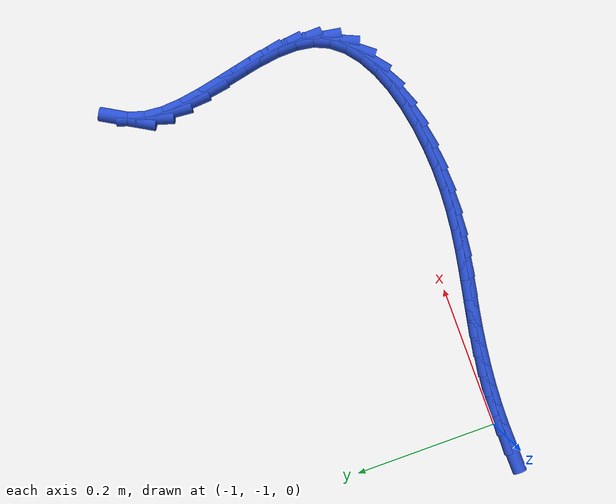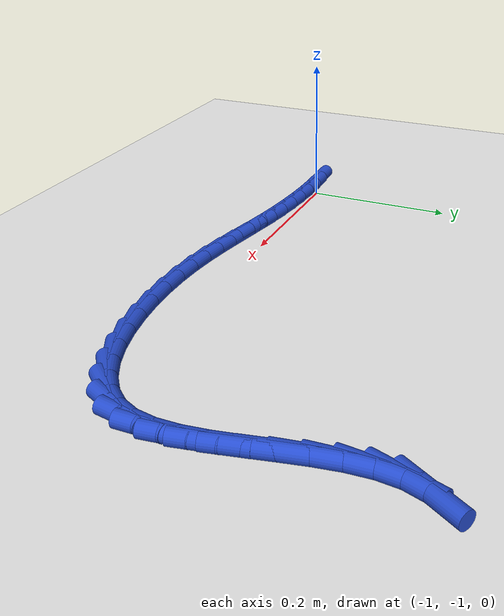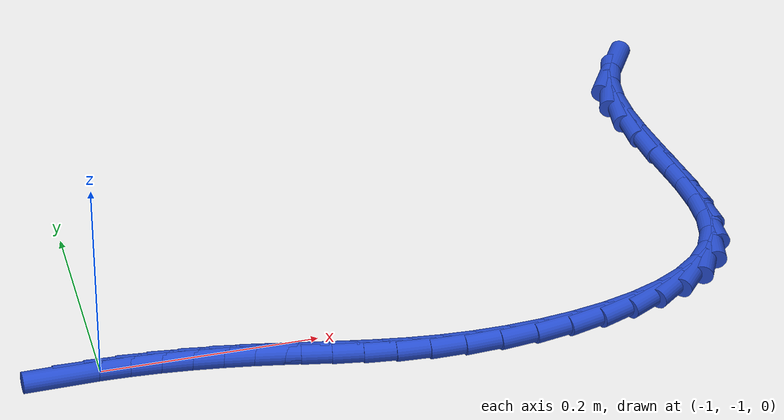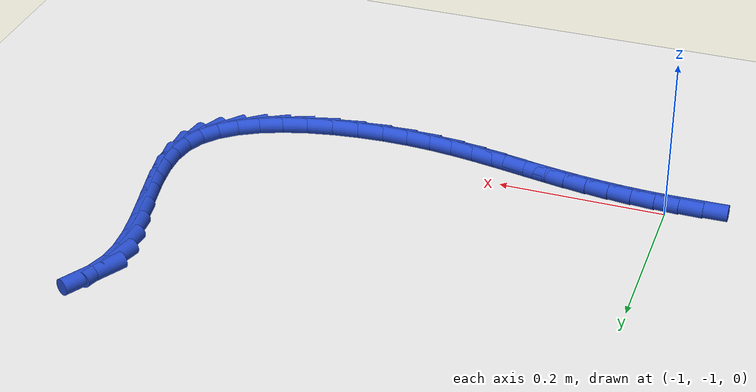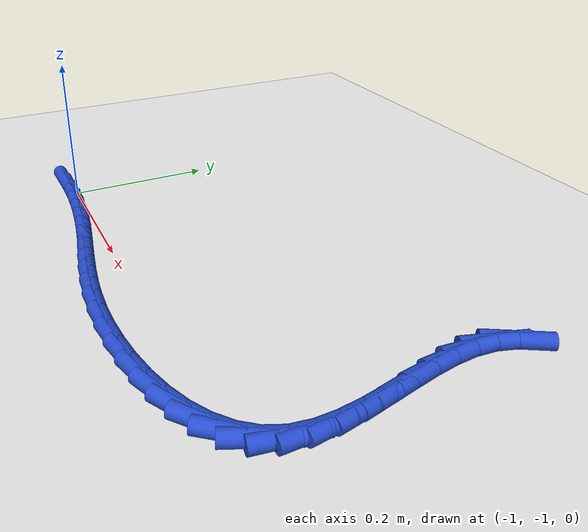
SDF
<sdf version="1.6">
 <world name="default">
  <model name="ground_plane">
   <static>1</static>
   <link name="link">
    <collision name="collision">
     <geometry><plane><normal>0 0 1</normal><size>100 100</size></plane></geometry>
     <surface><friction><ode><mu>100</mu><mu2>50</mu2></ode></friction></surface>
    </collision>
    <visual name="visual">
     <cast_shadows>0</cast_shadows>
     <geometry><plane><normal>0 0 1</normal><size>100 100</size></plane></geometry>
     <material>
      <script><uri>file://media/materials/scripts/gazebo.material</uri><name>Gazebo/WhiteGlow</name></script>
     </material>
    </visual>
   </link>
  </model>
  <model name="line">
   <link name="link_207">
    <pose>-1.0323292347760564 -1.0104850565019063 0.01 0 1.57 0.01950232032386235</pose>
    <collision name="collision">
     <geometry><cylinder><radius>0.01</radius><length>0.08</length></cylinder></geometry>
    </collision>
    <visual name="visual">
     <material>
      <script><name>Gazebo/Blue</name><uri>file://media/materials/scripts/gazebo.material</uri></script>
     </material>
     <geometry><cylinder><radius>0.01</radius><length>0.08</length></cylinder></geometry>
    </visual>
   </link>
   <link name="link_208">
    <pose>-1.0037923857940358 -1.0099284511637188 0.01 0 1.57 -0.02041659188704926</pose>
    <collision name="collision">
     <geometry><cylinder><radius>0.01</radius><length>0.08</length></cylinder></geometry>
    </collision>
    <visual name="visual">
     <material>
      <script><name>Gazebo/Blue</name><uri>file://media/materials/scripts/gazebo.material</uri></script>
     </material>
     <geometry><cylinder><radius>0.01</radius><length>0.08</length></cylinder></geometry>
    </visual>
   </link>
   <link name="link_209">
    <pose>-0.9753372952970724 -1.0105094878683236 0.01 0 1.57 -0.05702109822225171</pose>
    <collision name="collision">
     <geometry><cylinder><radius>0.01</radius><length>0.08</length></cylinder></geometry>
    </collision>
    <visual name="visual">
     <material>
      <script><name>Gazebo/Blue</name><uri>file://media/materials/scripts/gazebo.material</uri></script>
     </material>
     <geometry><cylinder><radius>0.01</radius><length>0.08</length></cylinder></geometry>
    </visual>
   </link>
   <link name="link_210">
    <pose>-0.9470336872474563 -1.0121251421117483 0.01 0 1.57 -0.09045863229472931</pose>
    <collision name="collision">
     <geometry><cylinder><radius>0.01</radius><length>0.08</length></cylinder></geometry>
    </collision>
    <visual name="visual">
     <material>
      <script><name>Gazebo/Blue</name><uri>file://media/materials/scripts/gazebo.material</uri></script>
     </material>
     <geometry><cylinder><radius>0.01</radius><length>0.08</length></cylinder></geometry>
    </visual>
   </link>
   <link name="link_211">
    <pose>-0.9189512856074744 -1.0146723893900205 0.01 0 1.57 -0.12087730181836269</pose>
    <collision name="collision">
     <geometry><cylinder><radius>0.01</radius><length>0.08</length></cylinder></geometry>
    </collision>
    <visual name="visual">
     <material>
      <script><name>Gazebo/Blue</name><uri>file://media/materials/scripts/gazebo.material</uri></script>
     </material>
     <geometry><cylinder><radius>0.01</radius><length>0.08</length></cylinder></geometry>
    </visual>
   </link>
   <link name="link_212">
    <pose>-0.8911598143394173 -1.0180482051991673 0.01 0 1.57 -0.14841705688885445</pose>
    <collision name="collision">
     <geometry><cylinder><radius>0.01</radius><length>0.08</length></cylinder></geometry>
    </collision>
    <visual name="visual">
     <material>
      <script><name>Gazebo/Blue</name><uri>file://media/materials/scripts/gazebo.material</uri></script>
     </material>
     <geometry><cylinder><radius>0.01</radius><length>0.08</length></cylinder></geometry>
    </visual>
   </link>
   <link name="link_213">
    <pose>-0.8637289974055714 -1.0221495650352166 0.01 0 1.57 -0.1727831671119416</pose>
    <collision name="collision">
     <geometry><cylinder><radius>0.01</radius><length>0.08</length></cylinder></geometry>
    </collision>
    <visual name="visual">
     <material>
      <script><name>Gazebo/Blue</name><uri>file://media/materials/scripts/gazebo.material</uri></script>
     </material>
     <geometry><cylinder><radius>0.01</radius><length>0.08</length></cylinder></geometry>
    </visual>
   </link>
   <link name="link_214">
    <pose>-0.836714073463701 -1.0268643007412441 0.01 0 1.57 -0.1876519507322283</pose>
    <collision name="collision">
     <geometry><cylinder><radius>0.01</radius><length>0.08</length></cylinder></geometry>
    </collision>
    <visual name="visual">
     <material>
      <script><name>Gazebo/Blue</name><uri>file://media/materials/scripts/gazebo.material</uri></script>
     </material>
     <geometry><cylinder><radius>0.01</radius><length>0.08</length></cylinder></geometry>
    </visual>
   </link>
   <link name="link_215">
    <pose>-0.8099563692169639 -1.0319452151264876 0.01 0 1.57 -0.1877836207138642</pose>
    <collision name="collision">
     <geometry><cylinder><radius>0.01</radius><length>0.08</length></cylinder></geometry>
    </collision>
    <visual name="visual">
     <material>
      <script><name>Gazebo/Blue</name><uri>file://media/materials/scripts/gazebo.material</uri></script>
     </material>
     <geometry><cylinder><radius>0.01</radius><length>0.08</length></cylinder></geometry>
    </visual>
   </link>
   <link name="link_216">
    <pose>-0.7831339775874873 -1.037042071879332 0.01 0 1.57 -0.17316262852297873</pose>
    <collision name="collision">
     <geometry><cylinder><radius>0.01</radius><length>0.08</length></cylinder></geometry>
    </collision>
    <visual name="visual">
     <material>
      <script><name>Gazebo/Blue</name><uri>file://media/materials/scripts/gazebo.material</uri></script>
     </material>
     <geometry><cylinder><radius>0.01</radius><length>0.08</length></cylinder></geometry>
    </visual>
   </link>
   <link name="link_217">
    <pose>-0.755920874674538 -1.041802035999301 0.01 0 1.57 -0.14471205785979485</pose>
    <collision name="collision">
     <geometry><cylinder><radius>0.01</radius><length>0.08</length></cylinder></geometry>
    </collision>
    <visual name="visual">
     <material>
      <script><name>Gazebo/Blue</name><uri>file://media/materials/scripts/gazebo.material</uri></script>
     </material>
     <geometry><cylinder><radius>0.01</radius><length>0.08</length></cylinder></geometry>
    </visual>
   </link>
   <link name="link_218">
    <pose>-0.7279910365773794 -1.0458722724859184 0.01 0 1.57 -0.1041233629222417</pose>
    <collision name="collision">
     <geometry><cylinder><radius>0.01</radius><length>0.08</length></cylinder></geometry>
    </collision>
    <visual name="visual">
     <material>
      <script><name>Gazebo/Blue</name><uri>file://media/materials/scripts/gazebo.material</uri></script>
     </material>
     <geometry><cylinder><radius>0.01</radius><length>0.08</length></cylinder></geometry>
    </visual>
   </link>
   <link name="link_219">
    <pose>-0.6990184393952785 -1.048899946338707 0.01 0 1.57 -0.05374561262085426</pose>
    <collision name="collision">
     <geometry><cylinder><radius>0.01</radius><length>0.08</length></cylinder></geometry>
    </collision>
    <visual name="visual">
     <material>
      <script><name>Gazebo/Blue</name><uri>file://media/materials/scripts/gazebo.material</uri></script>
     </material>
     <geometry><cylinder><radius>0.01</radius><length>0.08</length></cylinder></geometry>
    </visual>
   </link>
   <link name="link_220">
    <pose>-0.6686771094611029 -1.0505322316746706 0.01 0 1.57 0.0023380531765000347</pose>
    <collision name="collision">
     <geometry><cylinder><radius>0.01</radius><length>0.08</length></cylinder></geometry>
    </collision>
    <visual name="visual">
     <material>
      <script><name>Gazebo/Blue</name><uri>file://media/materials/scripts/gazebo.material</uri></script>
     </material>
     <geometry><cylinder><radius>0.01</radius><length>0.08</length></cylinder></geometry>
    </visual>
   </link>
   <link name="link_221">
    <pose>-0.6368700648579503 -1.0504578649774927 0.01 0 1.57 0.05987372976413542</pose>
    <collision name="collision">
     <geometry><cylinder><radius>0.01</radius><length>0.08</length></cylinder></geometry>
    </collision>
    <visual name="visual">
     <material>
      <script><name>Gazebo/Blue</name><uri>file://media/materials/scripts/gazebo.material</uri></script>
     </material>
     <geometry><cylinder><radius>0.01</radius><length>0.08</length></cylinder></geometry>
    </visual>
   </link>
   <link name="link_222">
    <pose>-0.6042565208803412 -1.0485028337268107 0.01 0 1.57 0.12150923189873572</pose>
    <collision name="collision">
     <geometry><cylinder><radius>0.01</radius><length>0.08</length></cylinder></geometry>
    </collision>
    <visual name="visual">
     <material>
      <script><name>Gazebo/Blue</name><uri>file://media/materials/scripts/gazebo.material</uri></script>
     </material>
     <geometry><cylinder><radius>0.01</radius><length>0.08</length></cylinder></geometry>
    </visual>
   </link>
   <link name="link_223">
    <pose>-0.5716515697551467 -1.0445214173132742 0.01 0 1.57 0.19125450035056</pose>
    <collision name="collision">
     <geometry><cylinder><radius>0.01</radius><length>0.08</length></cylinder></geometry>
    </collision>
    <visual name="visual">
     <material>
      <script><name>Gazebo/Blue</name><uri>file://media/materials/scripts/gazebo.material</uri></script>
     </material>
     <geometry><cylinder><radius>0.01</radius><length>0.08</length></cylinder></geometry>
    </visual>
   </link>
   <link name="link_224">
    <pose>-0.5398703037092334 -1.0383678951275297 0.01 0 1.57 0.2739760174517483</pose>
    <collision name="collision">
     <geometry><cylinder><radius>0.01</radius><length>0.08</length></cylinder></geometry>
    </collision>
    <visual name="visual">
     <material>
      <script><name>Gazebo/Blue</name><uri>file://media/materials/scripts/gazebo.material</uri></script>
     </material>
     <geometry><cylinder><radius>0.01</radius><length>0.08</length></cylinder></geometry>
    </visual>
   </link>
   <link name="link_225">
    <pose>-0.5097278149694721 -1.029896546560226 0.01 0 1.57 0.37612272378680234</pose>
    <collision name="collision">
     <geometry><cylinder><radius>0.01</radius><length>0.08</length></cylinder></geometry>
    </collision>
    <visual name="visual">
     <material>
      <script><name>Gazebo/Blue</name><uri>file://media/materials/scripts/gazebo.material</uri></script>
     </material>
     <geometry><cylinder><radius>0.01</radius><length>0.08</length></cylinder></geometry>
    </visual>
   </link>
   <link name="link_226">
    <pose>-0.48203919576273085 -1.0189616510020105 0.01 0 1.57 0.5063999987960462</pose>
    <collision name="collision">
     <geometry><cylinder><radius>0.01</radius><length>0.08</length></cylinder></geometry>
    </collision>
    <visual name="visual">
     <material>
      <script><name>Gazebo/Blue</name><uri>file://media/materials/scripts/gazebo.material</uri></script>
     </material>
     <geometry><cylinder><radius>0.01</radius><length>0.08</length></cylinder></geometry>
    </visual>
   </link>
   <link name="link_227">
    <pose>-0.45761953831587754 -1.0054174878435311 0.01 0 1.57 0.6756598534060168</pose>
    <collision name="collision">
     <geometry><cylinder><radius>0.01</radius><length>0.08</length></cylinder></geometry>
    </collision>
    <visual name="visual">
     <material>
      <script><name>Gazebo/Blue</name><uri>file://media/materials/scripts/gazebo.material</uri></script>
     </material>
     <geometry><cylinder><radius>0.01</radius><length>0.08</length></cylinder></geometry>
    </visual>
   </link>
   <link name="link_228">
    <pose>-0.43728393485578243 -0.9891183364754358 0.01 0 1.57 0.8936284016743322</pose>
    <collision name="collision">
     <geometry><cylinder><radius>0.01</radius><length>0.08</length></cylinder></geometry>
    </collision>
    <visual name="visual">
     <material>
      <script><name>Gazebo/Blue</name><uri>file://media/materials/scripts/gazebo.material</uri></script>
     </material>
     <geometry><cylinder><radius>0.01</radius><length>0.08</length></cylinder></geometry>
    </visual>
   </link>
   <link name="link_229">
    <pose>-0.4218474776093133 -0.969918476288372 0.01 0 1.57 1.1576674507150464</pose>
    <collision name="collision">
     <geometry><cylinder><radius>0.01</radius><length>0.08</length></cylinder></geometry>
    </collision>
    <visual name="visual">
     <material>
      <script><name>Gazebo/Blue</name><uri>file://media/materials/scripts/gazebo.material</uri></script>
     </material>
     <geometry><cylinder><radius>0.01</radius><length>0.08</length></cylinder></geometry>
    </visual>
   </link>
   <link name="link_230">
    <pose>-0.4120998559426165 -0.9476817170101226 0.01 0 1.57 1.4072722383932026</pose>
    <collision name="collision">
     <geometry><cylinder><radius>0.01</radius><length>0.08</length></cylinder></geometry>
    </collision>
    <visual name="visual">
     <material>
      <script><name>Gazebo/Blue</name><uri>file://media/materials/scripts/gazebo.material</uri></script>
     </material>
     <geometry><cylinder><radius>0.01</radius><length>0.08</length></cylinder></geometry>
    </visual>
   </link>
   <link name="link_231">
    <pose>-0.40796112859895634 -0.922598125836417 0.01 0 1.57 -1.558932339417277</pose>
    <collision name="collision">
     <geometry><cylinder><radius>0.01</radius><length>0.08</length></cylinder></geometry>
    </collision>
    <visual name="visual">
     <material>
      <script><name>Gazebo/Blue</name><uri>file://media/materials/scripts/gazebo.material</uri></script>
     </material>
     <geometry><cylinder><radius>0.01</radius><length>0.08</length></cylinder></geometry>
    </visual>
   </link>
   <link name="link_232">
    <pose>-0.40828551099578125 -0.8952576401326432 0.01 0 1.57 -1.4480153194863947</pose>
    <collision name="collision">
     <geometry><cylinder><radius>0.01</radius><length>0.08</length></cylinder></geometry>
    </collision>
    <visual name="visual">
     <material>
      <script><name>Gazebo/Blue</name><uri>file://media/materials/scripts/gazebo.material</uri></script>
     </material>
     <geometry><cylinder><radius>0.01</radius><length>0.08</length></cylinder></geometry>
    </visual>
   </link>
   <link name="link_233">
    <pose>-0.41186206324282293 -0.8662746414421635 0.01 0 1.57 -1.3857479053130195</pose>
    <collision name="collision">
     <geometry><cylinder><radius>0.01</radius><length>0.08</length></cylinder></geometry>
    </collision>
    <visual name="visual">
     <material>
      <script><name>Gazebo/Blue</name><uri>file://media/materials/scripts/gazebo.material</uri></script>
     </material>
     <geometry><cylinder><radius>0.01</radius><length>0.08</length></cylinder></geometry>
    </visual>
   </link>
   <link name="link_234">
    <pose>-0.4174798454498125 -0.8362635113083425 0.01 0 1.57 -1.3619523610212365</pose>
    <collision name="collision">
     <geometry><cylinder><radius>0.01</radius><length>0.08</length></cylinder></geometry>
    </collision>
    <visual name="visual">
     <material>
      <script><name>Gazebo/Blue</name><uri>file://media/materials/scripts/gazebo.material</uri></script>
     </material>
     <geometry><cylinder><radius>0.01</radius><length>0.08</length></cylinder></geometry>
    </visual>
   </link>
   <link name="link_235">
    <pose>-0.4239279177264817 -0.8058386312745432 0.01 0 1.57 -1.3726827516160038</pose>
    <collision name="collision">
     <geometry><cylinder><radius>0.01</radius><length>0.08</length></cylinder></geometry>
    </collision>
    <visual name="visual">
     <material>
      <script><name>Gazebo/Blue</name><uri>file://media/materials/scripts/gazebo.material</uri></script>
     </material>
     <geometry><cylinder><radius>0.01</radius><length>0.08</length></cylinder></geometry>
    </visual>
   </link>
   <link name="link_236">
    <pose>-0.42999534018256225 -0.775614382884128 0.01 0 1.57 -1.419763890525253</pose>
    <collision name="collision">
     <geometry><cylinder><radius>0.01</radius><length>0.08</length></cylinder></geometry>
    </collision>
    <visual name="visual">
     <material>
      <script><name>Gazebo/Blue</name><uri>file://media/materials/scripts/gazebo.material</uri></script>
     </material>
     <geometry><cylinder><radius>0.01</radius><length>0.08</length></cylinder></geometry>
    </visual>
   </link>
   <link name="link_237">
    <pose>-0.4344711729277851 -0.7462051476804612 0.01 0 1.57 -1.5110635861184316</pose>
    <collision name="collision">
     <geometry><cylinder><radius>0.01</radius><length>0.08</length></cylinder></geometry>
    </collision>
    <visual name="visual">
     <material>
      <script><name>Gazebo/Blue</name><uri>file://media/materials/scripts/gazebo.material</uri></script>
     </material>
     <geometry><cylinder><radius>0.01</radius><length>0.08</length></cylinder></geometry>
    </visual>
   </link>
   <link name="link_238">
    <pose>-0.43614447607188217 -0.7182253072069054 0.01 0 1.57 1.4808117158498135</pose>
    <collision name="collision">
     <geometry><cylinder><radius>0.01</radius><length>0.08</length></cylinder></geometry>
    </collision>
    <visual name="visual">
     <material>
      <script><name>Gazebo/Blue</name><uri>file://media/materials/scripts/gazebo.material</uri></script>
     </material>
     <geometry><cylinder><radius>0.01</radius><length>0.08</length></cylinder></geometry>
    </visual>
   </link>
   <link name="link_239">
    <pose>-0.43380430972458467 -0.6922892430068247 0.01 0 1.57 1.266931000810057</pose>
    <collision name="collision">
     <geometry><cylinder><radius>0.01</radius><length>0.08</length></cylinder></geometry>
    </collision>
    <visual name="visual">
     <material>
      <script><name>Gazebo/Blue</name><uri>file://media/materials/scripts/gazebo.material</uri></script>
     </material>
     <geometry><cylinder><radius>0.01</radius><length>0.08</length></cylinder></geometry>
    </visual>
   </link>
   <link name="link_240">
    <pose>-0.42646737297448534 -0.668891648107713 0.01 0 1.57 1.047241951802988</pose>
    <collision name="collision">
     <geometry><cylinder><radius>0.01</radius><length>0.08</length></cylinder></geometry>
    </collision>
    <visual name="visual">
     <material>
      <script><name>Gazebo/Blue</name><uri>file://media/materials/scripts/gazebo.material</uri></script>
     </material>
     <geometry><cylinder><radius>0.01</radius><length>0.08</length></cylinder></geometry>
    </visual>
   </link>
  </model>
 </world>
</sdf>
